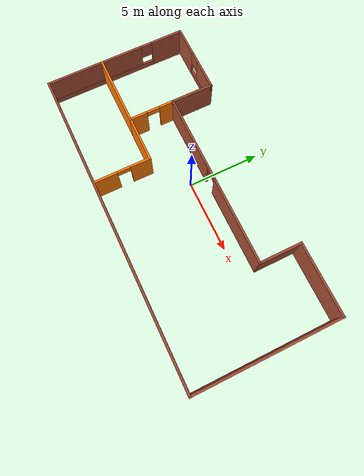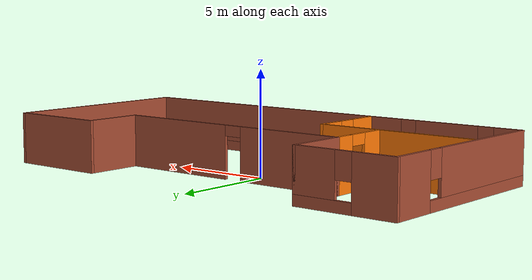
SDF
<?xml version='1.0'?>
<sdf version='1.7'>
  <model name='building1'>
    <pose>0.987144 -0.972435 0 0 -0 0</pose>
    <link name='Wall_1'>
      <pose>-10.925 0 0 0 -0 -1.5708</pose>
      <visual name='Wall_1_Visual_0'>
        <pose>-3.84405 0 1.25 0 -0 0</pose>
        <geometry>
          <box>
            <size>2.31189 0.15 2.5</size>
          </box>
        </geometry>
        <material>
          <script>
            <uri>file://media/materials/scripts/gazebo.material</uri>
            <name>Gazebo/Bricks</name>
          </script>
          <ambient>1 1 1 1</ambient>
        </material>
        <meta>
          <layer>0</layer>
        </meta>
      </visual>
      <collision name='Wall_1_Collision_0'>
        <geometry>
          <box>
            <size>2.31189 0.15 2.5</size>
          </box>
        </geometry>
        <pose>-3.84405 0 1.25 0 -0 0</pose>
      </collision>
      <visual name='Wall_1_Visual_1'>
        <pose>1.15595 0 0.25 0 -0 0</pose>
        <geometry>
          <box>
            <size>7.68811 0.15 0.5</size>
          </box>
        </geometry>
        <material>
          <script>
            <uri>file://media/materials/scripts/gazebo.material</uri>
            <name>Gazebo/Bricks</name>
          </script>
          <ambient>1 1 1 1</ambient>
        </material>
        <meta>
          <layer>0</layer>
        </meta>
      </visual>
      <collision name='Wall_1_Collision_1'>
        <geometry>
          <box>
            <size>7.68811 0.15 0.5</size>
          </box>
        </geometry>
        <pose>1.15595 0 0.25 0 -0 0</pose>
      </collision>
      <visual name='Wall_1_Visual_2'>
        <pose>1.55594 0 1.5 0 -0 0</pose>
        <geometry>
          <box>
            <size>6.88811 0.15 2</size>
          </box>
        </geometry>
        <material>
          <script>
            <uri>file://media/materials/scripts/gazebo.material</uri>
            <name>Gazebo/Bricks</name>
          </script>
          <ambient>1 1 1 1</ambient>
        </material>
        <meta>
          <layer>0</layer>
        </meta>
      </visual>
      <collision name='Wall_1_Collision_2'>
        <geometry>
          <box>
            <size>6.88811 0.15 2</size>
          </box>
        </geometry>
        <pose>1.55594 0 1.5 0 -0 0</pose>
      </collision>
      <visual name='Wall_1_Visual_3'>
        <pose>-2.28811 0 1.9 0 -0 0</pose>
        <geometry>
          <box>
            <size>0.8 0.15 1.2</size>
          </box>
        </geometry>
        <material>
          <script>
            <uri>file://media/materials/scripts/gazebo.material</uri>
            <name>Gazebo/Bricks</name>
          </script>
          <ambient>1 1 1 1</ambient>
        </material>
        <meta>
          <layer>0</layer>
        </meta>
      </visual>
      <collision name='Wall_1_Collision_3'>
        <geometry>
          <box>
            <size>0.8 0.15 1.2</size>
          </box>
        </geometry>
        <pose>-2.28811 0 1.9 0 -0 0</pose>
      </collision>
    </link>
    <link name='Wall_11'>
      <pose>-6.075 0.525 0 0 -0 -1.5708</pose>
      <visual name='Wall_11_Visual_0'>
        <pose>-1.08635 0 1.25 0 -0 0</pose>
        <geometry>
          <box>
            <size>1.07729 0.15 2.5</size>
          </box>
        </geometry>
        <material>
          <script>
            <uri>file://media/materials/scripts/gazebo.material</uri>
            <name>Gazebo/Grey</name>
          </script>
          <ambient>0.996078 0.47451 0.0196078 1</ambient>
        </material>
        <meta>
          <layer>0</layer>
        </meta>
      </visual>
      <collision name='Wall_11_Collision_0'>
        <geometry>
          <box>
            <size>1.07729 0.15 2.5</size>
          </box>
        </geometry>
        <pose>-1.08635 0 1.25 0 -0 0</pose>
      </collision>
      <visual name='Wall_11_Visual_1'>
        <pose>0.988647 0 1.25 0 -0 0</pose>
        <geometry>
          <box>
            <size>1.27271 0.15 2.5</size>
          </box>
        </geometry>
        <material>
          <script>
            <uri>file://media/materials/scripts/gazebo.material</uri>
            <name>Gazebo/Grey</name>
          </script>
          <ambient>0.996078 0.47451 0.0196078 1</ambient>
        </material>
        <meta>
          <layer>0</layer>
        </meta>
      </visual>
      <collision name='Wall_11_Collision_1'>
        <geometry>
          <box>
            <size>1.27271 0.15 2.5</size>
          </box>
        </geometry>
        <pose>0.988647 0 1.25 0 -0 0</pose>
      </collision>
      <visual name='Wall_11_Visual_2'>
        <pose>-0.097707 0 2.25 0 -0 0</pose>
        <geometry>
          <box>
            <size>0.9 0.15 0.5</size>
          </box>
        </geometry>
        <material>
          <script>
            <uri>file://media/materials/scripts/gazebo.material</uri>
            <name>Gazebo/Grey</name>
          </script>
          <ambient>0.996078 0.47451 0.0196078 1</ambient>
        </material>
        <meta>
          <layer>0</layer>
        </meta>
      </visual>
      <collision name='Wall_11_Collision_2'>
        <geometry>
          <box>
            <size>0.9 0.15 0.5</size>
          </box>
        </geometry>
        <pose>-0.097707 0 2.25 0 -0 0</pose>
      </collision>
    </link>
    <link name='Wall_12'>
      <collision name='Wall_12_Collision'>
        <geometry>
          <box>
            <size>3.25 0.15 2.5</size>
          </box>
        </geometry>
        <pose>0 0 1.25 0 -0 0</pose>
      </collision>
      <visual name='Wall_12_Visual'>
        <pose>0 0 1.25 0 -0 0</pose>
        <geometry>
          <box>
            <size>3.25 0.15 2.5</size>
          </box>
        </geometry>
        <material>
          <script>
            <uri>file://media/materials/scripts/gazebo.material</uri>
            <name>Gazebo/Grey</name>
          </script>
          <ambient>0.996078 0.47451 0.0196078 1</ambient>
        </material>
        <meta>
          <layer>0</layer>
        </meta>
      </visual>
      <pose>-4.525 -1.025 0 0 -0 0</pose>
    </link>
    <link name='Wall_13'>
      <pose>-2.975 -2.95 0 0 -0 -1.5708</pose>
      <visual name='Wall_13_Visual_0'>
        <pose>-1.27656 0 1.25 0 -0 0</pose>
        <geometry>
          <box>
            <size>1.44688 0.15 2.5</size>
          </box>
        </geometry>
        <material>
          <script>
            <uri>file://media/materials/scripts/gazebo.material</uri>
            <name>Gazebo/Grey</name>
          </script>
          <ambient>0.996078 0.47451 0.0196078 1</ambient>
        </material>
        <meta>
          <layer>0</layer>
        </meta>
      </visual>
      <collision name='Wall_13_Collision_0'>
        <geometry>
          <box>
            <size>1.44688 0.15 2.5</size>
          </box>
        </geometry>
        <pose>-1.27656 0 1.25 0 -0 0</pose>
      </collision>
      <visual name='Wall_13_Visual_1'>
        <pose>1.17344 0 1.25 0 -0 0</pose>
        <geometry>
          <box>
            <size>1.65312 0.15 2.5</size>
          </box>
        </geometry>
        <material>
          <script>
            <uri>file://media/materials/scripts/gazebo.material</uri>
            <name>Gazebo/Grey</name>
          </script>
          <ambient>0.996078 0.47451 0.0196078 1</ambient>
        </material>
        <meta>
          <layer>0</layer>
        </meta>
      </visual>
      <collision name='Wall_13_Collision_1'>
        <geometry>
          <box>
            <size>1.65312 0.15 2.5</size>
          </box>
        </geometry>
        <pose>1.17344 0 1.25 0 -0 0</pose>
      </collision>
      <visual name='Wall_13_Visual_2'>
        <pose>-0.103116 0 2.25 0 -0 0</pose>
        <geometry>
          <box>
            <size>0.9 0.15 0.5</size>
          </box>
        </geometry>
        <material>
          <script>
            <uri>file://media/materials/scripts/gazebo.material</uri>
            <name>Gazebo/Grey</name>
          </script>
          <ambient>0.996078 0.47451 0.0196078 1</ambient>
        </material>
        <meta>
          <layer>0</layer>
        </meta>
      </visual>
      <collision name='Wall_13_Collision_2'>
        <geometry>
          <box>
            <size>0.9 0.15 0.5</size>
          </box>
        </geometry>
        <pose>-0.103116 0 2.25 0 -0 0</pose>
      </collision>
    </link>
    <link name='Wall_15'>
      <collision name='Wall_15_Collision'>
        <geometry>
          <box>
            <size>5 0.15 2.5</size>
          </box>
        </geometry>
        <pose>0 0 1.25 0 -0 0</pose>
      </collision>
      <visual name='Wall_15_Visual'>
        <pose>0 0 1.25 0 -0 0</pose>
        <geometry>
          <box>
            <size>5 0.15 2.5</size>
          </box>
        </geometry>
        <material>
          <script>
            <uri>file://media/materials/scripts/gazebo.material</uri>
            <name>Gazebo/Grey</name>
          </script>
          <ambient>0.996078 0.47451 0.0196078 1</ambient>
        </material>
        <meta>
          <layer>0</layer>
        </meta>
      </visual>
      <pose>-8.5 -1.025 0 0 -0 3.14159</pose>
    </link>
    <link name='Wall_2'>
      <pose>-0 -4.925 0 0 -0 0</pose>
      <visual name='Wall_2_Visual_0'>
        <pose>-10.2951 0 1.25 0 -0 0</pose>
        <geometry>
          <box>
            <size>1.4098 0.15 2.5</size>
          </box>
        </geometry>
        <material>
          <script>
            <uri>file://media/materials/scripts/gazebo.material</uri>
            <name>Gazebo/Bricks</name>
          </script>
          <ambient>1 1 1 1</ambient>
        </material>
        <meta>
          <layer>0</layer>
        </meta>
      </visual>
      <collision name='Wall_2_Collision_0'>
        <geometry>
          <box>
            <size>1.4098 0.15 2.5</size>
          </box>
        </geometry>
        <pose>-10.2951 0 1.25 0 -0 0</pose>
      </collision>
      <visual name='Wall_2_Visual_1'>
        <pose>0.704898 0 0.25 0 -0 0</pose>
        <geometry>
          <box>
            <size>20.5902 0.15 0.5</size>
          </box>
        </geometry>
        <material>
          <script>
            <uri>file://media/materials/scripts/gazebo.material</uri>
            <name>Gazebo/Bricks</name>
          </script>
          <ambient>1 1 1 1</ambient>
        </material>
        <meta>
          <layer>0</layer>
        </meta>
      </visual>
      <collision name='Wall_2_Collision_1'>
        <geometry>
          <box>
            <size>20.5902 0.15 0.5</size>
          </box>
        </geometry>
        <pose>0.704898 0 0.25 0 -0 0</pose>
      </collision>
      <visual name='Wall_2_Visual_2'>
        <pose>-7.15471 0 1.5 0 -0 0</pose>
        <geometry>
          <box>
            <size>3.27099 0.15 2</size>
          </box>
        </geometry>
        <material>
          <script>
            <uri>file://media/materials/scripts/gazebo.material</uri>
            <name>Gazebo/Bricks</name>
          </script>
          <ambient>1 1 1 1</ambient>
        </material>
        <meta>
          <layer>0</layer>
        </meta>
      </visual>
      <collision name='Wall_2_Collision_2'>
        <geometry>
          <box>
            <size>3.27099 0.15 2</size>
          </box>
        </geometry>
        <pose>-7.15471 0 1.5 0 -0 0</pose>
      </collision>
      <visual name='Wall_2_Visual_3'>
        <pose>3.14039 0 1.5 0 -0 0</pose>
        <geometry>
          <box>
            <size>15.7192 0.15 2</size>
          </box>
        </geometry>
        <material>
          <script>
            <uri>file://media/materials/scripts/gazebo.material</uri>
            <name>Gazebo/Bricks</name>
          </script>
          <ambient>1 1 1 1</ambient>
        </material>
        <meta>
          <layer>0</layer>
        </meta>
      </visual>
      <collision name='Wall_2_Collision_3'>
        <geometry>
          <box>
            <size>15.7192 0.15 2</size>
          </box>
        </geometry>
        <pose>3.14039 0 1.5 0 -0 0</pose>
      </collision>
      <visual name='Wall_2_Visual_4'>
        <pose>-9.1902 0 1.9 0 -0 0</pose>
        <geometry>
          <box>
            <size>0.8 0.15 1.2</size>
          </box>
        </geometry>
        <material>
          <script>
            <uri>file://media/materials/scripts/gazebo.material</uri>
            <name>Gazebo/Bricks</name>
          </script>
          <ambient>1 1 1 1</ambient>
        </material>
        <meta>
          <layer>0</layer>
        </meta>
      </visual>
      <collision name='Wall_2_Collision_4'>
        <geometry>
          <box>
            <size>0.8 0.15 1.2</size>
          </box>
        </geometry>
        <pose>-9.1902 0 1.9 0 -0 0</pose>
      </collision>
      <visual name='Wall_2_Visual_5'>
        <pose>-5.11922 0 1.9 0 -0 0</pose>
        <geometry>
          <box>
            <size>0.8 0.15 1.2</size>
          </box>
        </geometry>
        <material>
          <script>
            <uri>file://media/materials/scripts/gazebo.material</uri>
            <name>Gazebo/Bricks</name>
          </script>
          <ambient>1 1 1 1</ambient>
        </material>
        <meta>
          <layer>0</layer>
        </meta>
      </visual>
      <collision name='Wall_2_Collision_5'>
        <geometry>
          <box>
            <size>0.8 0.15 1.2</size>
          </box>
        </geometry>
        <pose>-5.11922 0 1.9 0 -0 0</pose>
      </collision>
    </link>
    <link name='Wall_3'>
      <collision name='Wall_3_Collision'>
        <geometry>
          <box>
            <size>10 0.15 2.5</size>
          </box>
        </geometry>
        <pose>0 0 1.25 0 -0 0</pose>
      </collision>
      <visual name='Wall_3_Visual'>
        <pose>0 0 1.25 0 -0 0</pose>
        <geometry>
          <box>
            <size>10 0.15 2.5</size>
          </box>
        </geometry>
        <material>
          <script>
            <uri>file://media/materials/scripts/gazebo.material</uri>
            <name>Gazebo/Bricks</name>
          </script>
          <ambient>1 1 1 1</ambient>
        </material>
        <meta>
          <layer>0</layer>
        </meta>
      </visual>
      <pose>10.925 0 0 0 -0 1.5708</pose>
    </link>
    <link name='Wall_4'>
      <collision name='Wall_4_Collision'>
        <geometry>
          <box>
            <size>5 0.15 2.5</size>
          </box>
        </geometry>
        <pose>0 0 1.25 0 -0 0</pose>
      </collision>
      <visual name='Wall_4_Visual'>
        <pose>0 0 1.25 0 -0 0</pose>
        <geometry>
          <box>
            <size>5 0.15 2.5</size>
          </box>
        </geometry>
        <material>
          <script>
            <uri>file://media/materials/scripts/gazebo.material</uri>
            <name>Gazebo/Bricks</name>
          </script>
          <ambient>1 1 1 1</ambient>
        </material>
        <meta>
          <layer>0</layer>
        </meta>
      </visual>
      <pose>8.5 4.925 0 0 -0 3.14159</pose>
    </link>
    <link name='Wall_5'>
      <collision name='Wall_5_Collision'>
        <geometry>
          <box>
            <size>3 0.15 2.5</size>
          </box>
        </geometry>
        <pose>0 0 1.25 0 -0 0</pose>
      </collision>
      <visual name='Wall_5_Visual'>
        <pose>0 0 1.25 0 -0 0</pose>
        <geometry>
          <box>
            <size>3 0.15 2.5</size>
          </box>
        </geometry>
        <material>
          <script>
            <uri>file://media/materials/scripts/gazebo.material</uri>
            <name>Gazebo/Bricks</name>
          </script>
          <ambient>1 1 1 1</ambient>
        </material>
        <meta>
          <layer>0</layer>
        </meta>
      </visual>
      <pose>6.075 3.5 0 0 -0 -1.5708</pose>
    </link>
    <link name='Wall_7'>
      <pose>-8.5 4.925 0 0 -0 0</pose>
      <visual name='Wall_7_Visual_0'>
        <pose>-1.44814 0 1.25 0 -0 0</pose>
        <geometry>
          <box>
            <size>2.10371 0.15 2.5</size>
          </box>
        </geometry>
        <material>
          <script>
            <uri>file://media/materials/scripts/gazebo.material</uri>
            <name>Gazebo/Bricks</name>
          </script>
          <ambient>1 1 1 1</ambient>
        </material>
        <meta>
          <layer>0</layer>
        </meta>
      </visual>
      <collision name='Wall_7_Collision_0'>
        <geometry>
          <box>
            <size>2.10371 0.15 2.5</size>
          </box>
        </geometry>
        <pose>-1.44814 0 1.25 0 -0 0</pose>
      </collision>
      <visual name='Wall_7_Visual_1'>
        <pose>1.05186 0 0.25 0 -0 0</pose>
        <geometry>
          <box>
            <size>2.89629 0.15 0.5</size>
          </box>
        </geometry>
        <material>
          <script>
            <uri>file://media/materials/scripts/gazebo.material</uri>
            <name>Gazebo/Bricks</name>
          </script>
          <ambient>1 1 1 1</ambient>
        </material>
        <meta>
          <layer>0</layer>
        </meta>
      </visual>
      <collision name='Wall_7_Collision_1'>
        <geometry>
          <box>
            <size>2.89629 0.15 0.5</size>
          </box>
        </geometry>
        <pose>1.05186 0 0.25 0 -0 0</pose>
      </collision>
      <visual name='Wall_7_Visual_2'>
        <pose>1.45186 0 1.5 0 -0 0</pose>
        <geometry>
          <box>
            <size>2.09629 0.15 2</size>
          </box>
        </geometry>
        <material>
          <script>
            <uri>file://media/materials/scripts/gazebo.material</uri>
            <name>Gazebo/Bricks</name>
          </script>
          <ambient>1 1 1 1</ambient>
        </material>
        <meta>
          <layer>0</layer>
        </meta>
      </visual>
      <collision name='Wall_7_Collision_2'>
        <geometry>
          <box>
            <size>2.09629 0.15 2</size>
          </box>
        </geometry>
        <pose>1.45186 0 1.5 0 -0 0</pose>
      </collision>
      <visual name='Wall_7_Visual_3'>
        <pose>0.003714 0 1.9 0 -0 0</pose>
        <geometry>
          <box>
            <size>0.8 0.15 1.2</size>
          </box>
        </geometry>
        <material>
          <script>
            <uri>file://media/materials/scripts/gazebo.material</uri>
            <name>Gazebo/Bricks</name>
          </script>
          <ambient>1 1 1 1</ambient>
        </material>
        <meta>
          <layer>0</layer>
        </meta>
      </visual>
      <collision name='Wall_7_Collision_3'>
        <geometry>
          <box>
            <size>0.8 0.15 1.2</size>
          </box>
        </geometry>
        <pose>0.003714 0 1.9 0 -0 0</pose>
      </collision>
    </link>
    <link name='Wall_8'>
      <collision name='Wall_8_Collision'>
        <geometry>
          <box>
            <size>3 0.15 2.5</size>
          </box>
        </geometry>
        <pose>0 0 1.25 0 -0 0</pose>
      </collision>
      <visual name='Wall_8_Visual'>
        <pose>0 0 1.25 0 -0 0</pose>
        <geometry>
          <box>
            <size>3 0.15 2.5</size>
          </box>
        </geometry>
        <material>
          <script>
            <uri>file://media/materials/scripts/gazebo.material</uri>
            <name>Gazebo/Bricks</name>
          </script>
          <ambient>1 1 1 1</ambient>
        </material>
        <meta>
          <layer>0</layer>
        </meta>
      </visual>
      <pose>-6.075 3.5 0 0 -0 -1.5708</pose>
    </link>
    <link name='Wall_9'>
      <pose>-0.025 2.075 0 0 -0 0</pose>
      <visual name='Wall_9_Visual_0'>
        <pose>-3.42903 0 1.25 0 -0 0</pose>
        <geometry>
          <box>
            <size>5.39195 0.15 2.5</size>
          </box>
        </geometry>
        <material>
          <script>
            <uri>file://media/materials/scripts/gazebo.material</uri>
            <name>Gazebo/Bricks</name>
          </script>
          <ambient>1 1 1 1</ambient>
        </material>
        <meta>
          <layer>0</layer>
        </meta>
      </visual>
      <collision name='Wall_9_Collision_0'>
        <geometry>
          <box>
            <size>5.39195 0.15 2.5</size>
          </box>
        </geometry>
        <pose>-3.42903 0 1.25 0 -0 0</pose>
      </collision>
      <visual name='Wall_9_Visual_1'>
        <pose>3.14597 0 1.25 0 -0 0</pose>
        <geometry>
          <box>
            <size>5.95805 0.15 2.5</size>
          </box>
        </geometry>
        <material>
          <script>
            <uri>file://media/materials/scripts/gazebo.material</uri>
            <name>Gazebo/Bricks</name>
          </script>
          <ambient>1 1 1 1</ambient>
        </material>
        <meta>
          <layer>0</layer>
        </meta>
      </visual>
      <collision name='Wall_9_Collision_1'>
        <geometry>
          <box>
            <size>5.95805 0.15 2.5</size>
          </box>
        </geometry>
        <pose>3.14597 0 1.25 0 -0 0</pose>
      </collision>
      <visual name='Wall_9_Visual_2'>
        <pose>-0.283051 0 2.25 0 -0 0</pose>
        <geometry>
          <box>
            <size>0.9 0.15 0.5</size>
          </box>
        </geometry>
        <material>
          <script>
            <uri>file://media/materials/scripts/gazebo.material</uri>
            <name>Gazebo/Bricks</name>
          </script>
          <ambient>1 1 1 1</ambient>
        </material>
        <meta>
          <layer>0</layer>
        </meta>
      </visual>
      <collision name='Wall_9_Collision_2'>
        <geometry>
          <box>
            <size>0.9 0.15 0.5</size>
          </box>
        </geometry>
        <pose>-0.283051 0 2.25 0 -0 0</pose>
      </collision>
    </link>
    <static>1</static>
  </model>
</sdf>
